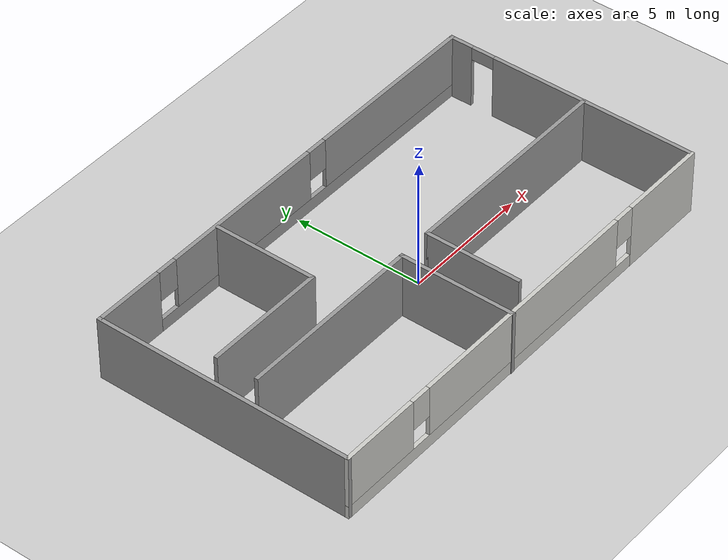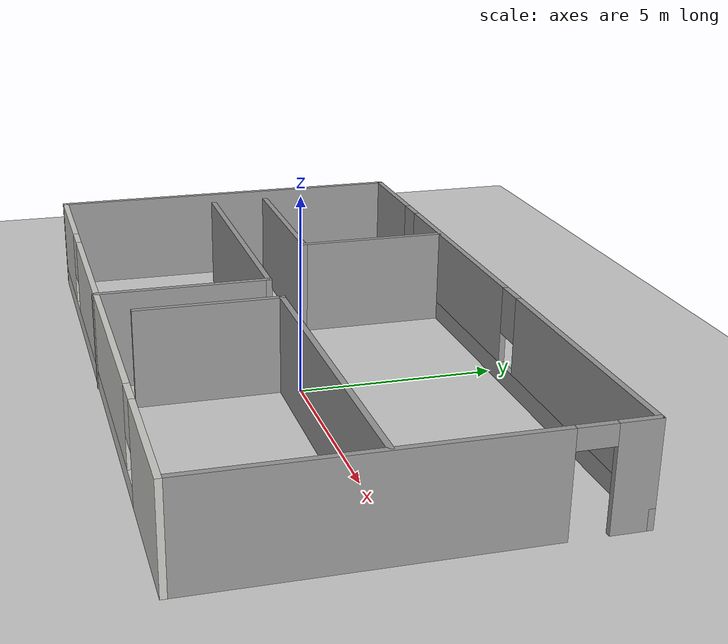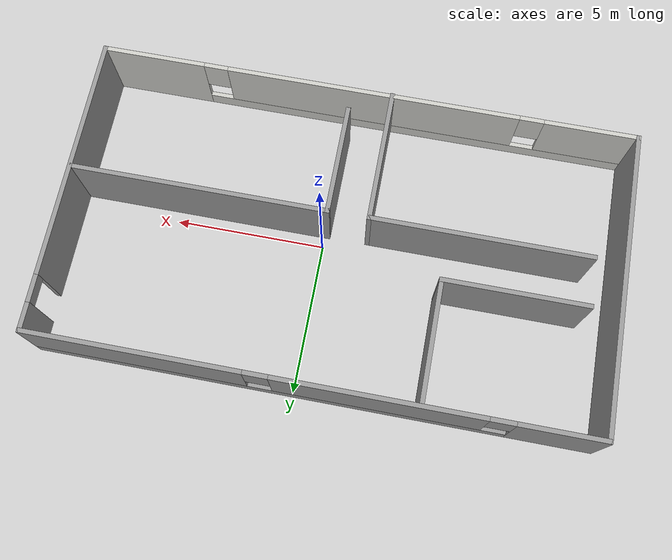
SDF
<sdf version='1.7'>
  <world name='default'>
    <light name='sun' type='directional'>
      <cast_shadows>1</cast_shadows>
      <pose>0 0 10 0 -0 0</pose>
      <diffuse>0.8 0.8 0.8 1</diffuse>
      <specular>0.2 0.2 0.2 1</specular>
      <attenuation>
        <range>1000</range>
        <constant>0.9</constant>
        <linear>0.01</linear>
        <quadratic>0.001</quadratic>
      </attenuation>
      <direction>-0.5 0.1 -0.9</direction>
      <spot>
        <inner_angle>0</inner_angle>
        <outer_angle>0</outer_angle>
        <falloff>0</falloff>
      </spot>
    </light>
    <include>
      <uri>model://ground_plane</uri>
    </include>
<model name='room'>
    <pose>-0.618033 0.127189 0 0 -0 0</pose>
    <link name='Wall_19'>
      <pose>0 4.93839 0 0 -0 0</pose>
      <visual name='Wall_19_Visual_0'>
        <pose>-7.60118 0 1.25 0 -0 0</pose>
        <geometry>
          <box>
            <size>2.79763 0.15 2.5</size>
          </box>
        </geometry>
        <material>
          <script>
            <uri>file://media/materials/scripts/gazebo.material</uri>
            <name>Gazebo/Grey</name>
          </script>
          <ambient>1 1 1 1</ambient>
        </material>
        <meta>
          <layer>0</layer>
        </meta>
      </visual>
      <collision name='Wall_19_Collision_0'>
        <geometry>
          <box>
            <size>2.79763 0.15 2.5</size>
          </box>
        </geometry>
        <pose>-7.60118 0 1.25 0 -0 0</pose>
      </collision>
      <visual name='Wall_19_Visual_1'>
        <pose>1.39882 0 0.25 0 -0 0</pose>
        <geometry>
          <box>
            <size>15.2024 0.15 0.5</size>
          </box>
        </geometry>
        <material>
          <script>
            <uri>file://media/materials/scripts/gazebo.material</uri>
            <name>Gazebo/Grey</name>
          </script>
          <ambient>1 1 1 1</ambient>
        </material>
        <meta>
          <layer>0</layer>
        </meta>
      </visual>
      <collision name='Wall_19_Collision_1'>
        <geometry>
          <box>
            <size>15.2024 0.15 0.5</size>
          </box>
        </geometry>
        <pose>1.39882 0 0.25 0 -0 0</pose>
      </collision>
      <visual name='Wall_19_Visual_2'>
        <pose>-2.07834 0 1.5 0 -0 0</pose>
        <geometry>
          <box>
            <size>6.64806 0.15 2</size>
          </box>
        </geometry>
        <material>
          <script>
            <uri>file://media/materials/scripts/gazebo.material</uri>
            <name>Gazebo/Grey</name>
          </script>
          <ambient>1 1 1 1</ambient>
        </material>
        <meta>
          <layer>0</layer>
        </meta>
      </visual>
      <collision name='Wall_19_Collision_2'>
        <geometry>
          <box>
            <size>6.64806 0.15 2</size>
          </box>
        </geometry>
        <pose>-2.07834 0 1.5 0 -0 0</pose>
      </collision>
      <visual name='Wall_19_Visual_3'>
        <pose>5.52284 0 1.5 0 -0 0</pose>
        <geometry>
          <box>
            <size>6.95431 0.15 2</size>
          </box>
        </geometry>
        <material>
          <script>
            <uri>file://media/materials/scripts/gazebo.material</uri>
            <name>Gazebo/Grey</name>
          </script>
          <ambient>1 1 1 1</ambient>
        </material>
        <meta>
          <layer>0</layer>
        </meta>
      </visual>
      <collision name='Wall_19_Collision_3'>
        <geometry>
          <box>
            <size>6.95431 0.15 2</size>
          </box>
        </geometry>
        <pose>5.52284 0 1.5 0 -0 0</pose>
      </collision>
      <visual name='Wall_19_Visual_4'>
        <pose>-5.80237 0 1.9 0 -0 0</pose>
        <geometry>
          <box>
            <size>0.8 0.15 1.2</size>
          </box>
        </geometry>
        <material>
          <script>
            <uri>file://media/materials/scripts/gazebo.material</uri>
            <name>Gazebo/Grey</name>
          </script>
          <ambient>1 1 1 1</ambient>
        </material>
        <meta>
          <layer>0</layer>
        </meta>
      </visual>
      <collision name='Wall_19_Collision_4'>
        <geometry>
          <box>
            <size>0.8 0.15 1.2</size>
          </box>
        </geometry>
        <pose>-5.80237 0 1.9 0 -0 0</pose>
      </collision>
      <visual name='Wall_19_Visual_5'>
        <pose>1.64569 0 1.9 0 -0 0</pose>
        <geometry>
          <box>
            <size>0.8 0.15 1.2</size>
          </box>
        </geometry>
        <material>
          <script>
            <uri>file://media/materials/scripts/gazebo.material</uri>
            <name>Gazebo/Grey</name>
          </script>
          <ambient>1 1 1 1</ambient>
        </material>
        <meta>
          <layer>0</layer>
        </meta>
      </visual>
      <collision name='Wall_19_Collision_5'>
        <geometry>
          <box>
            <size>0.8 0.15 1.2</size>
          </box>
        </geometry>
        <pose>1.64569 0 1.9 0 -0 0</pose>
      </collision>
    </link>
    <link name='Wall_20'>
      <pose>8.925 0.013385 0 0 -0 -1.5708</pose>
      <visual name='Wall_20_Visual_0'>
        <pose>-4.51671 0 1.25 0 -0 0</pose>
        <geometry>
          <box>
            <size>0.966575 0.15 2.5</size>
          </box>
        </geometry>
        <material>
          <script>
            <uri>file://media/materials/scripts/gazebo.material</uri>
            <name>Gazebo/Grey</name>
          </script>
          <ambient>1 1 1 1</ambient>
        </material>
        <meta>
          <layer>0</layer>
        </meta>
      </visual>
      <collision name='Wall_20_Collision_0'>
        <geometry>
          <box>
            <size>0.966575 0.15 2.5</size>
          </box>
        </geometry>
        <pose>-4.51671 0 1.25 0 -0 0</pose>
      </collision>
      <visual name='Wall_20_Visual_1'>
        <pose>0.933288 0 1.25 0 -0 0</pose>
        <geometry>
          <box>
            <size>8.13343 0.15 2.5</size>
          </box>
        </geometry>
        <material>
          <script>
            <uri>file://media/materials/scripts/gazebo.material</uri>
            <name>Gazebo/Grey</name>
          </script>
          <ambient>1 1 1 1</ambient>
        </material>
        <meta>
          <layer>0</layer>
        </meta>
      </visual>
      <collision name='Wall_20_Collision_1'>
        <geometry>
          <box>
            <size>8.13343 0.15 2.5</size>
          </box>
        </geometry>
        <pose>0.933288 0 1.25 0 -0 0</pose>
      </collision>
      <visual name='Wall_20_Visual_2'>
        <pose>-3.58343 0 2.25 0 -0 0</pose>
        <geometry>
          <box>
            <size>0.9 0.15 0.5</size>
          </box>
        </geometry>
        <material>
          <script>
            <uri>file://media/materials/scripts/gazebo.material</uri>
            <name>Gazebo/Grey</name>
          </script>
          <ambient>1 1 1 1</ambient>
        </material>
        <meta>
          <layer>0</layer>
        </meta>
      </visual>
      <collision name='Wall_20_Collision_2'>
        <geometry>
          <box>
            <size>0.9 0.15 0.5</size>
          </box>
        </geometry>
        <pose>-3.58343 0 2.25 0 -0 0</pose>
      </collision>
    </link>
    <link name='Wall_21'>
      <pose>0 -4.91162 0 0 -0 3.14159</pose>
      <visual name='Wall_21_Visual_0'>
        <pose>-7.25764 0 1.25 0 -0 0</pose>
        <geometry>
          <box>
            <size>3.48472 0.15 2.5</size>
          </box>
        </geometry>
        <material>
          <script>
            <uri>file://media/materials/scripts/gazebo.material</uri>
            <name>Gazebo/CeilingTiled</name>
          </script>
          <ambient>1 1 1 1</ambient>
        </material>
        <meta>
          <layer>0</layer>
        </meta>
      </visual>
      <collision name='Wall_21_Collision_0'>
        <geometry>
          <box>
            <size>3.48472 0.15 2.5</size>
          </box>
        </geometry>
        <pose>-7.25764 0 1.25 0 -0 0</pose>
      </collision>
      <visual name='Wall_21_Visual_1'>
        <pose>1.74236 0 0.25 0 -0 0</pose>
        <geometry>
          <box>
            <size>14.5153 0.15 0.5</size>
          </box>
        </geometry>
        <material>
          <script>
            <uri>file://media/materials/scripts/gazebo.material</uri>
            <name>Gazebo/CeilingTiled</name>
          </script>
          <ambient>1 1 1 1</ambient>
        </material>
        <meta>
          <layer>0</layer>
        </meta>
      </visual>
      <collision name='Wall_21_Collision_1'>
        <geometry>
          <box>
            <size>14.5153 0.15 0.5</size>
          </box>
        </geometry>
        <pose>1.74236 0 0.25 0 -0 0</pose>
      </collision>
      <visual name='Wall_21_Visual_2'>
        <pose>0.170065 0 1.5 0 -0 0</pose>
        <geometry>
          <box>
            <size>9.77069 0.15 2</size>
          </box>
        </geometry>
        <material>
          <script>
            <uri>file://media/materials/scripts/gazebo.material</uri>
            <name>Gazebo/CeilingTiled</name>
          </script>
          <ambient>1 1 1 1</ambient>
        </material>
        <meta>
          <layer>0</layer>
        </meta>
      </visual>
      <collision name='Wall_21_Collision_2'>
        <geometry>
          <box>
            <size>9.77069 0.15 2</size>
          </box>
        </geometry>
        <pose>0.170065 0 1.5 0 -0 0</pose>
      </collision>
      <visual name='Wall_21_Visual_3'>
        <pose>7.4277 0 1.5 0 -0 0</pose>
        <geometry>
          <box>
            <size>3.14459 0.15 2</size>
          </box>
        </geometry>
        <material>
          <script>
            <uri>file://media/materials/scripts/gazebo.material</uri>
            <name>Gazebo/CeilingTiled</name>
          </script>
          <ambient>1 1 1 1</ambient>
        </material>
        <meta>
          <layer>0</layer>
        </meta>
      </visual>
      <collision name='Wall_21_Collision_3'>
        <geometry>
          <box>
            <size>3.14459 0.15 2</size>
          </box>
        </geometry>
        <pose>7.4277 0 1.5 0 -0 0</pose>
      </collision>
      <visual name='Wall_21_Visual_4'>
        <pose>-5.11528 0 1.9 0 -0 0</pose>
        <geometry>
          <box>
            <size>0.8 0.15 1.2</size>
          </box>
        </geometry>
        <material>
          <script>
            <uri>file://media/materials/scripts/gazebo.material</uri>
            <name>Gazebo/CeilingTiled</name>
          </script>
          <ambient>1 1 1 1</ambient>
        </material>
        <meta>
          <layer>0</layer>
        </meta>
      </visual>
      <collision name='Wall_21_Collision_4'>
        <geometry>
          <box>
            <size>0.8 0.15 1.2</size>
          </box>
        </geometry>
        <pose>-5.11528 0 1.9 0 -0 0</pose>
      </collision>
      <visual name='Wall_21_Visual_5'>
        <pose>5.45541 0 1.9 0 -0 0</pose>
        <geometry>
          <box>
            <size>0.8 0.15 1.2</size>
          </box>
        </geometry>
        <material>
          <script>
            <uri>file://media/materials/scripts/gazebo.material</uri>
            <name>Gazebo/CeilingTiled</name>
          </script>
          <ambient>1 1 1 1</ambient>
        </material>
        <meta>
          <layer>0</layer>
        </meta>
      </visual>
      <collision name='Wall_21_Collision_5'>
        <geometry>
          <box>
            <size>0.8 0.15 1.2</size>
          </box>
        </geometry>
        <pose>5.45541 0 1.9 0 -0 0</pose>
      </collision>
    </link>
    <link name='Wall_22'>
      <collision name='Wall_22_Collision'>
        <geometry>
          <box>
            <size>10 0.15 2.5</size>
          </box>
        </geometry>
        <pose>0 0 1.25 0 -0 0</pose>
      </collision>
      <visual name='Wall_22_Visual'>
        <pose>0 0 1.25 0 -0 0</pose>
        <geometry>
          <box>
            <size>10 0.15 2.5</size>
          </box>
        </geometry>
        <material>
          <script>
            <uri>file://media/materials/scripts/gazebo.material</uri>
            <name>Gazebo/Grey</name>
          </script>
          <ambient>1 1 1 1</ambient>
        </material>
        <meta>
          <layer>0</layer>
        </meta>
      </visual>
      <pose>-8.925 0.013385 0 0 -0 1.5708</pose>
    </link>
    <link name='Wall_24'>
      <collision name='Wall_24_Collision'>
        <geometry>
          <box>
            <size>4 0.15 2.5</size>
          </box>
        </geometry>
        <pose>0 0 1.25 0 -0 0</pose>
      </collision>
      <visual name='Wall_24_Visual'>
        <pose>0 0 1.25 0 -0 0</pose>
        <geometry>
          <box>
            <size>4 0.15 2.5</size>
          </box>
        </geometry>
        <material>
          <script>
            <uri>file://media/materials/scripts/gazebo.material</uri>
            <name>Gazebo/Grey</name>
          </script>
          <ambient>1 1 1 1</ambient>
        </material>
        <meta>
          <layer>0</layer>
        </meta>
      </visual>
      <pose>-3.37365 2.92086 0 0 -0 -1.5708</pose>
    </link>
    <link name='Wall_25'>
      <collision name='Wall_25_Collision'>
        <geometry>
          <box>
            <size>4.75 0.15 2.5</size>
          </box>
        </geometry>
        <pose>0 0 1.25 0 -0 0</pose>
      </collision>
      <visual name='Wall_25_Visual'>
        <pose>0 0 1.25 0 -0 0</pose>
        <geometry>
          <box>
            <size>4.75 0.15 2.5</size>
          </box>
        </geometry>
        <material>
          <script>
            <uri>file://media/materials/scripts/gazebo.material</uri>
            <name>Gazebo/Grey</name>
          </script>
          <ambient>1 1 1 1</ambient>
        </material>
        <meta>
          <layer>0</layer>
        </meta>
      </visual>
      <pose>-5.67365 0.995862 0 0 -0 3.14159</pose>
    </link>
    <link name='Wall_27'>
      <collision name='Wall_27_Collision'>
        <geometry>
          <box>
            <size>4.5 0.15 2.5</size>
          </box>
        </geometry>
        <pose>0 0 1.25 0 -0 0</pose>
      </collision>
      <visual name='Wall_27_Visual'>
        <pose>0 0 1.25 0 -0 0</pose>
        <geometry>
          <box>
            <size>4.5 0.15 2.5</size>
          </box>
        </geometry>
        <material>
          <script>
            <uri>file://media/materials/scripts/gazebo.material</uri>
            <name>Gazebo/Grey</name>
          </script>
          <ambient>1 1 1 1</ambient>
        </material>
        <meta>
          <layer>0</layer>
        </meta>
      </visual>
      <pose>-0.829287 -2.76338 0 0 -0 1.5708</pose>
    </link>
    <link name='Wall_28'>
      <collision name='Wall_28_Collision'>
        <geometry>
          <box>
            <size>7.25 0.15 2.5</size>
          </box>
        </geometry>
        <pose>0 0 1.25 0 -0 0</pose>
      </collision>
      <visual name='Wall_28_Visual'>
        <pose>0 0 1.25 0 -0 0</pose>
        <geometry>
          <box>
            <size>7.25 0.15 2.5</size>
          </box>
        </geometry>
        <material>
          <script>
            <uri>file://media/materials/scripts/gazebo.material</uri>
            <name>Gazebo/Grey</name>
          </script>
          <ambient>1 1 1 1</ambient>
        </material>
        <meta>
          <layer>0</layer>
        </meta>
      </visual>
      <pose>-4.37929 -0.588385 0 0 -0 3.14159</pose>
    </link>
    <link name='Wall_30'>
      <collision name='Wall_30_Collision'>
        <geometry>
          <box>
            <size>8.5 0.15 2.5</size>
          </box>
        </geometry>
        <pose>0 0 1.25 0 -0 0</pose>
      </collision>
      <visual name='Wall_30_Visual'>
        <pose>0 0 1.25 0 -0 0</pose>
        <geometry>
          <box>
            <size>8.5 0.15 2.5</size>
          </box>
        </geometry>
        <material>
          <script>
            <uri>file://media/materials/scripts/gazebo.material</uri>
            <name>Gazebo/Grey</name>
          </script>
          <ambient>1 1 1 1</ambient>
        </material>
        <meta>
          <layer>0</layer>
        </meta>
      </visual>
      <pose>4.68744 -0.5667 0 0 -0 3.14159</pose>
    </link>
    <link name='Wall_31'>
      <collision name='Wall_31_Collision'>
        <geometry>
          <box>
            <size>3.75 0.15 2.5</size>
          </box>
        </geometry>
        <pose>0 0 1.25 0 -0 0</pose>
      </collision>
      <visual name='Wall_31_Visual'>
        <pose>0 0 1.25 0 -0 0</pose>
        <geometry>
          <box>
            <size>3.75 0.15 2.5</size>
          </box>
        </geometry>
        <material>
          <script>
            <uri>file://media/materials/scripts/gazebo.material</uri>
            <name>Gazebo/Grey</name>
          </script>
          <ambient>1 1 1 1</ambient>
        </material>
        <meta>
          <layer>0</layer>
        </meta>
      </visual>
      <pose>0.512437 -2.3667 0 0 -0 -1.5708</pose>
    </link>
    <static>1</static>
  </model>
  </world>
</sdf>
